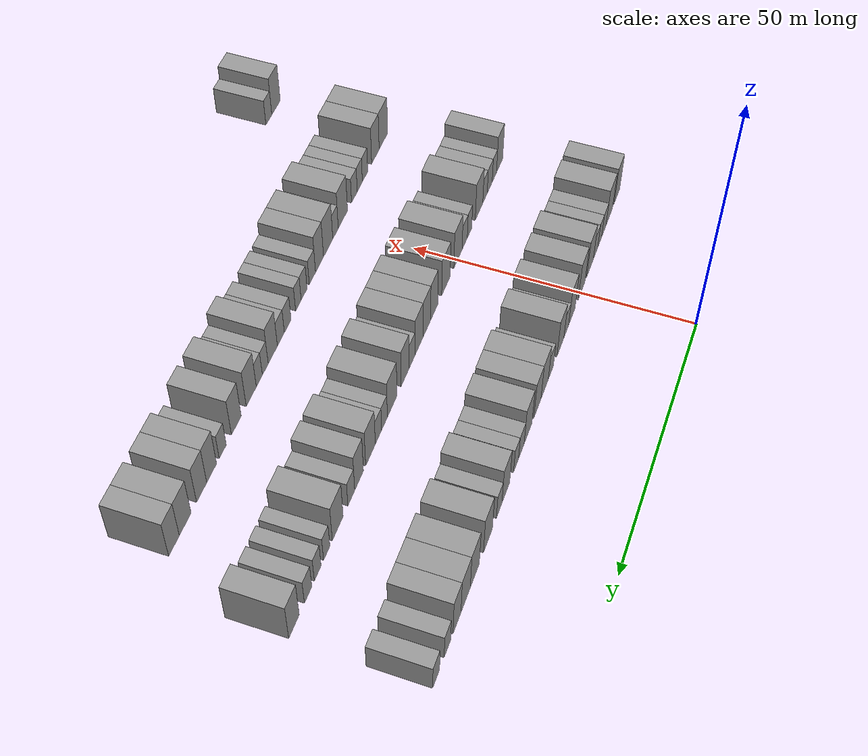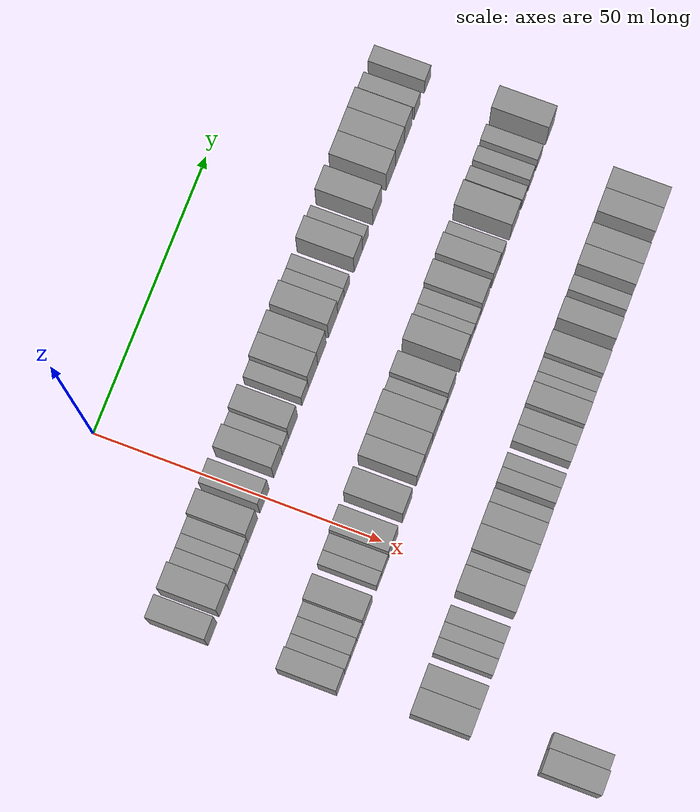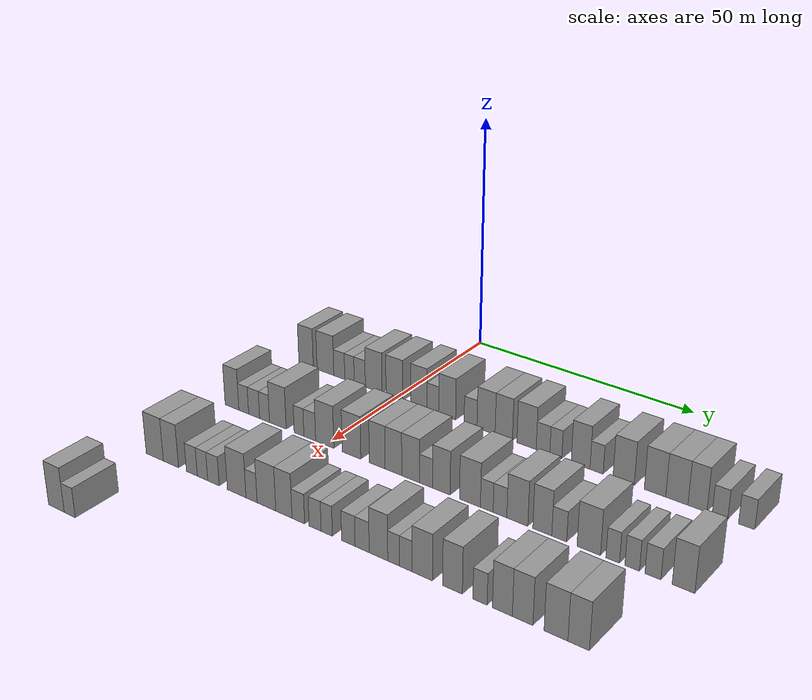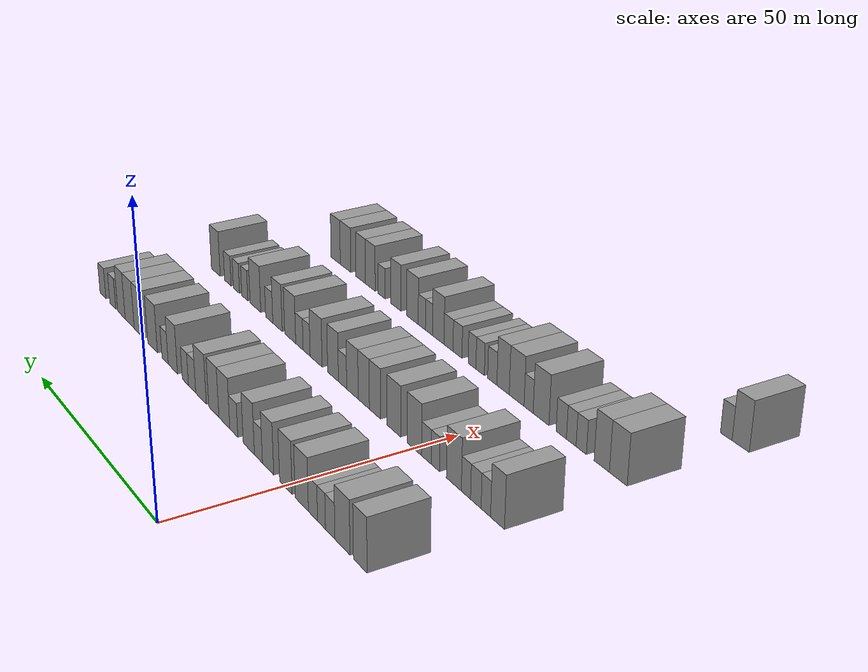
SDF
<sdf version="1.6">
 <world name="default">
  <model name="building_91">
   <static>1</static>
   <pose>25.0000 -23.4855 0 0.000000 0.000000 0.000000</pose>
   <link name="link">
    <pose>0 0 4.50 0 0 0</pose>
    <collision name="collision"><geometry><box><size>10.0000 3.9057 9.0000</size></box></geometry></collision>
    <visual name="visual">
     <cast_shadows>0</cast_shadows>
     <geometry><box><size>10.0000 3.9057 9.0000</size></box></geometry>
     <material>
      <script>
       <uri>model://grey_wall/materials/scripts</uri>
       <uri>model://grey_wall/materials/textures</uri>
       <name>vrc/grey_wall</name>
      </script>
     </material>
    </visual>
   </link>
  </model>
  <model name="building_92">
   <static>1</static>
   <pose>25.0000 -18.3001 0 0.000000 0.000000 0.000000</pose>
   <link name="link">
    <pose>0 0 4.50 0 0 0</pose>
    <collision name="collision"><geometry><box><size>10.0000 4.4651 9.0000</size></box></geometry></collision>
    <visual name="visual">
     <cast_shadows>0</cast_shadows>
     <geometry><box><size>10.0000 4.4651 9.0000</size></box></geometry>
     <material>
      <script>
       <uri>model://grey_wall/materials/scripts</uri>
       <uri>model://grey_wall/materials/textures</uri>
       <name>vrc/grey_wall</name>
      </script>
     </material>
    </visual>
   </link>
  </model>
  <model name="building_93">
   <static>1</static>
   <pose>25.0000 -14.6301 0 0.000000 0.000000 0.000000</pose>
   <link name="link">
    <pose>0 0 3.00 0 0 0</pose>
    <collision name="collision"><geometry><box><size>10.0000 2.8748 6.0000</size></box></geometry></collision>
    <visual name="visual">
     <cast_shadows>0</cast_shadows>
     <geometry><box><size>10.0000 2.8748 6.0000</size></box></geometry>
     <material>
      <script>
       <uri>model://grey_wall/materials/scripts</uri>
       <uri>model://grey_wall/materials/textures</uri>
       <name>vrc/grey_wall</name>
      </script>
     </material>
    </visual>
   </link>
  </model>
  <model name="building_94">
   <static>1</static>
   <pose>25.0000 -11.9665 0 0.000000 0.000000 0.000000</pose>
   <link name="link">
    <pose>0 0 3.00 0 0 0</pose>
    <collision name="collision"><geometry><box><size>10.0000 2.4523 6.0000</size></box></geometry></collision>
    <visual name="visual">
     <cast_shadows>0</cast_shadows>
     <geometry><box><size>10.0000 2.4523 6.0000</size></box></geometry>
     <material>
      <script>
       <uri>model://grey_wall/materials/scripts</uri>
       <uri>model://grey_wall/materials/textures</uri>
       <name>vrc/grey_wall</name>
      </script>
     </material>
    </visual>
   </link>
  </model>
  <model name="building_95">
   <static>1</static>
   <pose>25.0000 -9.3056 0 0.000000 0.000000 0.000000</pose>
   <link name="link">
    <pose>0 0 3.00 0 0 0</pose>
    <collision name="collision"><geometry><box><size>10.0000 2.8696 6.0000</size></box></geometry></collision>
    <visual name="visual">
     <cast_shadows>0</cast_shadows>
     <geometry><box><size>10.0000 2.8696 6.0000</size></box></geometry>
     <material>
      <script>
       <uri>model://grey_wall/materials/scripts</uri>
       <uri>model://grey_wall/materials/textures</uri>
       <name>vrc/grey_wall</name>
      </script>
     </material>
    </visual>
   </link>
  </model>
  <model name="building_96">
   <static>1</static>
   <pose>25.0000 -5.7426 0 0.000000 0.000000 0.000000</pose>
   <link name="link">
    <pose>0 0 4.50 0 0 0</pose>
    <collision name="collision"><geometry><box><size>10.0000 4.2564 9.0000</size></box></geometry></collision>
    <visual name="visual">
     <cast_shadows>0</cast_shadows>
     <geometry><box><size>10.0000 4.2564 9.0000</size></box></geometry>
     <material>
      <script>
       <uri>model://grey_wall/materials/scripts</uri>
       <uri>model://grey_wall/materials/textures</uri>
       <name>vrc/grey_wall</name>
      </script>
     </material>
    </visual>
   </link>
  </model>
  <model name="building_97">
   <static>1</static>
   <pose>25.0000 -0.5386 0 0.000000 0.000000 0.000000</pose>
   <link name="link">
    <pose>0 0 4.50 0 0 0</pose>
    <collision name="collision"><geometry><box><size>10.0000 4.1515 9.0000</size></box></geometry></collision>
    <visual name="visual">
     <cast_shadows>0</cast_shadows>
     <geometry><box><size>10.0000 4.1515 9.0000</size></box></geometry>
     <material>
      <script>
       <uri>model://grey_wall/materials/scripts</uri>
       <uri>model://grey_wall/materials/textures</uri>
       <name>vrc/grey_wall</name>
      </script>
     </material>
    </visual>
   </link>
  </model>
  <model name="building_98">
   <static>1</static>
   <pose>25.0000 5.4912 0 0.000000 0.000000 0.000000</pose>
   <link name="link">
    <pose>0 0 4.50 0 0 0</pose>
    <collision name="collision"><geometry><box><size>10.0000 3.9081 9.0000</size></box></geometry></collision>
    <visual name="visual">
     <cast_shadows>0</cast_shadows>
     <geometry><box><size>10.0000 3.9081 9.0000</size></box></geometry>
     <material>
      <script>
       <uri>model://grey_wall/materials/scripts</uri>
       <uri>model://grey_wall/materials/textures</uri>
       <name>vrc/grey_wall</name>
      </script>
     </material>
    </visual>
   </link>
  </model>
  <model name="building_99">
   <static>1</static>
   <pose>25.0000 8.8556 0 0.000000 0.000000 0.000000</pose>
   <link name="link">
    <pose>0 0 3.00 0 0 0</pose>
    <collision name="collision"><geometry><box><size>10.0000 2.8207 6.0000</size></box></geometry></collision>
    <visual name="visual">
     <cast_shadows>0</cast_shadows>
     <geometry><box><size>10.0000 2.8207 6.0000</size></box></geometry>
     <material>
      <script>
       <uri>model://grey_wall/materials/scripts</uri>
       <uri>model://grey_wall/materials/textures</uri>
       <name>vrc/grey_wall</name>
      </script>
     </material>
    </visual>
   </link>
  </model>
  <model name="building_100">
   <static>1</static>
   <pose>25.0000 12.2772 0 0.000000 0.000000 0.000000</pose>
   <link name="link">
    <pose>0 0 4.50 0 0 0</pose>
    <collision name="collision"><geometry><box><size>10.0000 4.0226 9.0000</size></box></geometry></collision>
    <visual name="visual">
     <cast_shadows>0</cast_shadows>
     <geometry><box><size>10.0000 4.0226 9.0000</size></box></geometry>
     <material>
      <script>
       <uri>model://grey_wall/materials/scripts</uri>
       <uri>model://grey_wall/materials/textures</uri>
       <name>vrc/grey_wall</name>
      </script>
     </material>
    </visual>
   </link>
  </model>
  <model name="building_101">
   <static>1</static>
   <pose>25.0000 17.7709 0 0.000000 0.000000 0.000000</pose>
   <link name="link">
    <pose>0 0 3.00 0 0 0</pose>
    <collision name="collision"><geometry><box><size>10.0000 2.9647 6.0000</size></box></geometry></collision>
    <visual name="visual">
     <cast_shadows>0</cast_shadows>
     <geometry><box><size>10.0000 2.9647 6.0000</size></box></geometry>
     <material>
      <script>
       <uri>model://grey_wall/materials/scripts</uri>
       <uri>model://grey_wall/materials/textures</uri>
       <name>vrc/grey_wall</name>
      </script>
     </material>
    </visual>
   </link>
  </model>
  <model name="building_102">
   <static>1</static>
   <pose>25.0000 21.3331 0 0.000000 0.000000 0.000000</pose>
   <link name="link">
    <pose>0 0 4.50 0 0 0</pose>
    <collision name="collision"><geometry><box><size>10.0000 4.1596 9.0000</size></box></geometry></collision>
    <visual name="visual">
     <cast_shadows>0</cast_shadows>
     <geometry><box><size>10.0000 4.1596 9.0000</size></box></geometry>
     <material>
      <script>
       <uri>model://grey_wall/materials/scripts</uri>
       <uri>model://grey_wall/materials/textures</uri>
       <name>vrc/grey_wall</name>
      </script>
     </material>
    </visual>
   </link>
  </model>
  <model name="building_103">
   <static>1</static>
   <pose>25.0000 25.3613 0 0.000000 0.000000 0.000000</pose>
   <link name="link">
    <pose>0 0 4.50 0 0 0</pose>
    <collision name="collision"><geometry><box><size>10.0000 3.8967 9.0000</size></box></geometry></collision>
    <visual name="visual">
     <cast_shadows>0</cast_shadows>
     <geometry><box><size>10.0000 3.8967 9.0000</size></box></geometry>
     <material>
      <script>
       <uri>model://grey_wall/materials/scripts</uri>
       <uri>model://grey_wall/materials/textures</uri>
       <name>vrc/grey_wall</name>
      </script>
     </material>
    </visual>
   </link>
  </model>
  <model name="building_104">
   <static>1</static>
   <pose>25.0000 30.4325 0 0.000000 0.000000 0.000000</pose>
   <link name="link">
    <pose>0 0 4.50 0 0 0</pose>
    <collision name="collision"><geometry><box><size>10.0000 4.2458 9.0000</size></box></geometry></collision>
    <visual name="visual">
     <cast_shadows>0</cast_shadows>
     <geometry><box><size>10.0000 4.2458 9.0000</size></box></geometry>
     <material>
      <script>
       <uri>model://grey_wall/materials/scripts</uri>
       <uri>model://grey_wall/materials/textures</uri>
       <name>vrc/grey_wall</name>
      </script>
     </material>
    </visual>
   </link>
  </model>
  <model name="building_105">
   <static>1</static>
   <pose>25.0000 34.0360 0 0.000000 0.000000 0.000000</pose>
   <link name="link">
    <pose>0 0 3.00 0 0 0</pose>
    <collision name="collision"><geometry><box><size>10.0000 2.9611 6.0000</size></box></geometry></collision>
    <visual name="visual">
     <cast_shadows>0</cast_shadows>
     <geometry><box><size>10.0000 2.9611 6.0000</size></box></geometry>
     <material>
      <script>
       <uri>model://grey_wall/materials/scripts</uri>
       <uri>model://grey_wall/materials/textures</uri>
       <name>vrc/grey_wall</name>
      </script>
     </material>
    </visual>
   </link>
  </model>
  <model name="building_106">
   <static>1</static>
   <pose>25.0000 36.8038 0 0.000000 0.000000 0.000000</pose>
   <link name="link">
    <pose>0 0 3.00 0 0 0</pose>
    <collision name="collision"><geometry><box><size>10.0000 2.5746 6.0000</size></box></geometry></collision>
    <visual name="visual">
     <cast_shadows>0</cast_shadows>
     <geometry><box><size>10.0000 2.5746 6.0000</size></box></geometry>
     <material>
      <script>
       <uri>model://grey_wall/materials/scripts</uri>
       <uri>model://grey_wall/materials/textures</uri>
       <name>vrc/grey_wall</name>
      </script>
     </material>
    </visual>
   </link>
  </model>
  <model name="building_107">
   <static>1</static>
   <pose>25.0000 42.0669 0 0.000000 0.000000 0.000000</pose>
   <link name="link">
    <pose>0 0 4.50 0 0 0</pose>
    <collision name="collision"><geometry><box><size>10.0000 3.9517 9.0000</size></box></geometry></collision>
    <visual name="visual">
     <cast_shadows>0</cast_shadows>
     <geometry><box><size>10.0000 3.9517 9.0000</size></box></geometry>
     <material>
      <script>
       <uri>model://grey_wall/materials/scripts</uri>
       <uri>model://grey_wall/materials/textures</uri>
       <name>vrc/grey_wall</name>
      </script>
     </material>
    </visual>
   </link>
  </model>
  <model name="building_108">
   <static>1</static>
   <pose>25.0000 45.4124 0 0.000000 0.000000 0.000000</pose>
   <link name="link">
    <pose>0 0 3.00 0 0 0</pose>
    <collision name="collision"><geometry><box><size>10.0000 2.7392 6.0000</size></box></geometry></collision>
    <visual name="visual">
     <cast_shadows>0</cast_shadows>
     <geometry><box><size>10.0000 2.7392 6.0000</size></box></geometry>
     <material>
      <script>
       <uri>model://grey_wall/materials/scripts</uri>
       <uri>model://grey_wall/materials/textures</uri>
       <name>vrc/grey_wall</name>
      </script>
     </material>
    </visual>
   </link>
  </model>
  <model name="building_109">
   <static>1</static>
   <pose>25.0000 50.9433 0 0.000000 0.000000 0.000000</pose>
   <link name="link">
    <pose>0 0 4.50 0 0 0</pose>
    <collision name="collision"><geometry><box><size>10.0000 4.3226 9.0000</size></box></geometry></collision>
    <visual name="visual">
     <cast_shadows>0</cast_shadows>
     <geometry><box><size>10.0000 4.3226 9.0000</size></box></geometry>
     <material>
      <script>
       <uri>model://grey_wall/materials/scripts</uri>
       <uri>model://grey_wall/materials/textures</uri>
       <name>vrc/grey_wall</name>
      </script>
     </material>
    </visual>
   </link>
  </model>
  <model name="building_110">
   <static>1</static>
   <pose>25.0000 57.2245 0 0.000000 0.000000 0.000000</pose>
   <link name="link">
    <pose>0 0 4.50 0 0 0</pose>
    <collision name="collision"><geometry><box><size>10.0000 4.2398 9.0000</size></box></geometry></collision>
    <visual name="visual">
     <cast_shadows>0</cast_shadows>
     <geometry><box><size>10.0000 4.2398 9.0000</size></box></geometry>
     <material>
      <script>
       <uri>model://grey_wall/materials/scripts</uri>
       <uri>model://grey_wall/materials/textures</uri>
       <name>vrc/grey_wall</name>
      </script>
     </material>
    </visual>
   </link>
  </model>
  <model name="building_111">
   <static>1</static>
   <pose>25.0000 61.4959 0 0.000000 0.000000 0.000000</pose>
   <link name="link">
    <pose>0 0 4.50 0 0 0</pose>
    <collision name="collision"><geometry><box><size>10.0000 4.3029 9.0000</size></box></geometry></collision>
    <visual name="visual">
     <cast_shadows>0</cast_shadows>
     <geometry><box><size>10.0000 4.3029 9.0000</size></box></geometry>
     <material>
      <script>
       <uri>model://grey_wall/materials/scripts</uri>
       <uri>model://grey_wall/materials/textures</uri>
       <name>vrc/grey_wall</name>
      </script>
     </material>
    </visual>
   </link>
  </model>
  <model name="building_112">
   <static>1</static>
   <pose>25.0000 65.4475 0 0.000000 0.000000 0.000000</pose>
   <link name="link">
    <pose>0 0 4.50 0 0 0</pose>
    <collision name="collision"><geometry><box><size>10.0000 3.6004 9.0000</size></box></geometry></collision>
    <visual name="visual">
     <cast_shadows>0</cast_shadows>
     <geometry><box><size>10.0000 3.6004 9.0000</size></box></geometry>
     <material>
      <script>
       <uri>model://grey_wall/materials/scripts</uri>
       <uri>model://grey_wall/materials/textures</uri>
       <name>vrc/grey_wall</name>
      </script>
     </material>
    </visual>
   </link>
  </model>
  <model name="building_113">
   <static>1</static>
   <pose>25.0000 69.6966 0 0.000000 0.000000 0.000000</pose>
   <link name="link">
    <pose>0 0 3.00 0 0 0</pose>
    <collision name="collision"><geometry><box><size>10.0000 2.8977 6.0000</size></box></geometry></collision>
    <visual name="visual">
     <cast_shadows>0</cast_shadows>
     <geometry><box><size>10.0000 2.8977 6.0000</size></box></geometry>
     <material>
      <script>
       <uri>model://grey_wall/materials/scripts</uri>
       <uri>model://grey_wall/materials/textures</uri>
       <name>vrc/grey_wall</name>
      </script>
     </material>
    </visual>
   </link>
  </model>
  <model name="building_114">
   <static>1</static>
   <pose>25.0000 74.6300 0 0.000000 0.000000 0.000000</pose>
   <link name="link">
    <pose>0 0 3.00 0 0 0</pose>
    <collision name="collision"><geometry><box><size>10.0000 2.9692 6.0000</size></box></geometry></collision>
    <visual name="visual">
     <cast_shadows>0</cast_shadows>
     <geometry><box><size>10.0000 2.9692 6.0000</size></box></geometry>
     <material>
      <script>
       <uri>model://grey_wall/materials/scripts</uri>
       <uri>model://grey_wall/materials/textures</uri>
       <name>vrc/grey_wall</name>
      </script>
     </material>
    </visual>
   </link>
  </model>
  <model name="building_278">
   <static>1</static>
   <pose>47.0000 -23.8120 0 0.000000 0.000000 0.000000</pose>
   <link name="link">
    <pose>0 0 4.50 0 0 0</pose>
    <collision name="collision"><geometry><box><size>10.0000 3.6523 9.0000</size></box></geometry></collision>
    <visual name="visual">
     <cast_shadows>0</cast_shadows>
     <geometry><box><size>10.0000 3.6523 9.0000</size></box></geometry>
     <material>
      <script>
       <uri>model://grey_wall/materials/scripts</uri>
       <uri>model://grey_wall/materials/textures</uri>
       <name>vrc/grey_wall</name>
      </script>
     </material>
    </visual>
   </link>
  </model>
  <model name="building_279">
   <static>1</static>
   <pose>47.0000 -20.7096 0 0.000000 0.000000 0.000000</pose>
   <link name="link">
    <pose>0 0 3.00 0 0 0</pose>
    <collision name="collision"><geometry><box><size>10.0000 2.5525 6.0000</size></box></geometry></collision>
    <visual name="visual">
     <cast_shadows>0</cast_shadows>
     <geometry><box><size>10.0000 2.5525 6.0000</size></box></geometry>
     <material>
      <script>
       <uri>model://grey_wall/materials/scripts</uri>
       <uri>model://grey_wall/materials/textures</uri>
       <name>vrc/grey_wall</name>
      </script>
     </material>
    </visual>
   </link>
  </model>
  <model name="building_280">
   <static>1</static>
   <pose>47.0000 -17.9913 0 0.000000 0.000000 0.000000</pose>
   <link name="link">
    <pose>0 0 3.00 0 0 0</pose>
    <collision name="collision"><geometry><box><size>10.0000 2.8841 6.0000</size></box></geometry></collision>
    <visual name="visual">
     <cast_shadows>0</cast_shadows>
     <geometry><box><size>10.0000 2.8841 6.0000</size></box></geometry>
     <material>
      <script>
       <uri>model://grey_wall/materials/scripts</uri>
       <uri>model://grey_wall/materials/textures</uri>
       <name>vrc/grey_wall</name>
      </script>
     </material>
    </visual>
   </link>
  </model>
  <model name="building_281">
   <static>1</static>
   <pose>47.0000 -15.2765 0 0.000000 0.000000 0.000000</pose>
   <link name="link">
    <pose>0 0 3.00 0 0 0</pose>
    <collision name="collision"><geometry><box><size>10.0000 2.5456 6.0000</size></box></geometry></collision>
    <visual name="visual">
     <cast_shadows>0</cast_shadows>
     <geometry><box><size>10.0000 2.5456 6.0000</size></box></geometry>
     <material>
      <script>
       <uri>model://grey_wall/materials/scripts</uri>
       <uri>model://grey_wall/materials/textures</uri>
       <name>vrc/grey_wall</name>
      </script>
     </material>
    </visual>
   </link>
  </model>
  <model name="building_282">
   <static>1</static>
   <pose>47.0000 -11.8802 0 0.000000 0.000000 0.000000</pose>
   <link name="link">
    <pose>0 0 4.50 0 0 0</pose>
    <collision name="collision"><geometry><box><size>10.0000 4.2469 9.0000</size></box></geometry></collision>
    <visual name="visual">
     <cast_shadows>0</cast_shadows>
     <geometry><box><size>10.0000 4.2469 9.0000</size></box></geometry>
     <material>
      <script>
       <uri>model://grey_wall/materials/scripts</uri>
       <uri>model://grey_wall/materials/textures</uri>
       <name>vrc/grey_wall</name>
      </script>
     </material>
    </visual>
   </link>
  </model>
  <model name="building_283">
   <static>1</static>
   <pose>47.0000 -6.5452 0 0.000000 0.000000 0.000000</pose>
   <link name="link">
    <pose>0 0 3.00 0 0 0</pose>
    <collision name="collision"><geometry><box><size>10.0000 2.4231 6.0000</size></box></geometry></collision>
    <visual name="visual">
     <cast_shadows>0</cast_shadows>
     <geometry><box><size>10.0000 2.4231 6.0000</size></box></geometry>
     <material>
      <script>
       <uri>model://grey_wall/materials/scripts</uri>
       <uri>model://grey_wall/materials/textures</uri>
       <name>vrc/grey_wall</name>
      </script>
     </material>
    </visual>
   </link>
  </model>
  <model name="building_284">
   <static>1</static>
   <pose>47.0000 -3.8878 0 0.000000 0.000000 0.000000</pose>
   <link name="link">
    <pose>0 0 3.00 0 0 0</pose>
    <collision name="collision"><geometry><box><size>10.0000 2.8918 6.0000</size></box></geometry></collision>
    <visual name="visual">
     <cast_shadows>0</cast_shadows>
     <geometry><box><size>10.0000 2.8918 6.0000</size></box></geometry>
     <material>
      <script>
       <uri>model://grey_wall/materials/scripts</uri>
       <uri>model://grey_wall/materials/textures</uri>
       <name>vrc/grey_wall</name>
      </script>
     </material>
    </visual>
   </link>
  </model>
  <model name="building_285">
   <static>1</static>
   <pose>47.0000 -0.2331 0 0.000000 0.000000 0.000000</pose>
   <link name="link">
    <pose>0 0 4.50 0 0 0</pose>
    <collision name="collision"><geometry><box><size>10.0000 4.4175 9.0000</size></box></geometry></collision>
    <visual name="visual">
     <cast_shadows>0</cast_shadows>
     <geometry><box><size>10.0000 4.4175 9.0000</size></box></geometry>
     <material>
      <script>
       <uri>model://grey_wall/materials/scripts</uri>
       <uri>model://grey_wall/materials/textures</uri>
       <name>vrc/grey_wall</name>
      </script>
     </material>
    </visual>
   </link>
  </model>
  <model name="building_286">
   <static>1</static>
   <pose>47.0000 6.1808 0 0.000000 0.000000 0.000000</pose>
   <link name="link">
    <pose>0 0 4.50 0 0 0</pose>
    <collision name="collision"><geometry><box><size>10.0000 4.4102 9.0000</size></box></geometry></collision>
    <visual name="visual">
     <cast_shadows>0</cast_shadows>
     <geometry><box><size>10.0000 4.4102 9.0000</size></box></geometry>
     <material>
      <script>
       <uri>model://grey_wall/materials/scripts</uri>
       <uri>model://grey_wall/materials/textures</uri>
       <name>vrc/grey_wall</name>
      </script>
     </material>
    </visual>
   </link>
  </model>
  <model name="building_287">
   <static>1</static>
   <pose>47.0000 12.2134 0 0.000000 0.000000 0.000000</pose>
   <link name="link">
    <pose>0 0 4.50 0 0 0</pose>
    <collision name="collision"><geometry><box><size>10.0000 3.6551 9.0000</size></box></geometry></collision>
    <visual name="visual">
     <cast_shadows>0</cast_shadows>
     <geometry><box><size>10.0000 3.6551 9.0000</size></box></geometry>
     <material>
      <script>
       <uri>model://grey_wall/materials/scripts</uri>
       <uri>model://grey_wall/materials/textures</uri>
       <name>vrc/grey_wall</name>
      </script>
     </material>
    </visual>
   </link>
  </model>
  <model name="building_288">
   <static>1</static>
   <pose>47.0000 15.9133 0 0.000000 0.000000 0.000000</pose>
   <link name="link">
    <pose>0 0 4.50 0 0 0</pose>
    <collision name="collision"><geometry><box><size>10.0000 3.7447 9.0000</size></box></geometry></collision>
    <visual name="visual">
     <cast_shadows>0</cast_shadows>
     <geometry><box><size>10.0000 3.7447 9.0000</size></box></geometry>
     <material>
      <script>
       <uri>model://grey_wall/materials/scripts</uri>
       <uri>model://grey_wall/materials/textures</uri>
       <name>vrc/grey_wall</name>
      </script>
     </material>
    </visual>
   </link>
  </model>
  <model name="building_289">
   <static>1</static>
   <pose>47.0000 19.7661 0 0.000000 0.000000 0.000000</pose>
   <link name="link">
    <pose>0 0 4.50 0 0 0</pose>
    <collision name="collision"><geometry><box><size>10.0000 3.9609 9.0000</size></box></geometry></collision>
    <visual name="visual">
     <cast_shadows>0</cast_shadows>
     <geometry><box><size>10.0000 3.9609 9.0000</size></box></geometry>
     <material>
      <script>
       <uri>model://grey_wall/materials/scripts</uri>
       <uri>model://grey_wall/materials/textures</uri>
       <name>vrc/grey_wall</name>
      </script>
     </material>
    </visual>
   </link>
  </model>
  <model name="building_290">
   <static>1</static>
   <pose>47.0000 23.1935 0 0.000000 0.000000 0.000000</pose>
   <link name="link">
    <pose>0 0 3.00 0 0 0</pose>
    <collision name="collision"><geometry><box><size>10.0000 2.8937 6.0000</size></box></geometry></collision>
    <visual name="visual">
     <cast_shadows>0</cast_shadows>
     <geometry><box><size>10.0000 2.8937 6.0000</size></box></geometry>
     <material>
      <script>
       <uri>model://grey_wall/materials/scripts</uri>
       <uri>model://grey_wall/materials/textures</uri>
       <name>vrc/grey_wall</name>
      </script>
     </material>
    </visual>
   </link>
  </model>
  <model name="building_291">
   <static>1</static>
   <pose>47.0000 26.5494 0 0.000000 0.000000 0.000000</pose>
   <link name="link">
    <pose>0 0 4.50 0 0 0</pose>
    <collision name="collision"><geometry><box><size>10.0000 3.8181 9.0000</size></box></geometry></collision>
    <visual name="visual">
     <cast_shadows>0</cast_shadows>
     <geometry><box><size>10.0000 3.8181 9.0000</size></box></geometry>
     <material>
      <script>
       <uri>model://grey_wall/materials/scripts</uri>
       <uri>model://grey_wall/materials/textures</uri>
       <name>vrc/grey_wall</name>
      </script>
     </material>
    </visual>
   </link>
  </model>
  <model name="building_292">
   <static>1</static>
   <pose>47.0000 32.6739 0 0.000000 0.000000 0.000000</pose>
   <link name="link">
    <pose>0 0 4.50 0 0 0</pose>
    <collision name="collision"><geometry><box><size>10.0000 4.4308 9.0000</size></box></geometry></collision>
    <visual name="visual">
     <cast_shadows>0</cast_shadows>
     <geometry><box><size>10.0000 4.4308 9.0000</size></box></geometry>
     <material>
      <script>
       <uri>model://grey_wall/materials/scripts</uri>
       <uri>model://grey_wall/materials/textures</uri>
       <name>vrc/grey_wall</name>
      </script>
     </material>
    </visual>
   </link>
  </model>
  <model name="building_293">
   <static>1</static>
   <pose>47.0000 36.2097 0 0.000000 0.000000 0.000000</pose>
   <link name="link">
    <pose>0 0 3.00 0 0 0</pose>
    <collision name="collision"><geometry><box><size>10.0000 2.6408 6.0000</size></box></geometry></collision>
    <visual name="visual">
     <cast_shadows>0</cast_shadows>
     <geometry><box><size>10.0000 2.6408 6.0000</size></box></geometry>
     <material>
      <script>
       <uri>model://grey_wall/materials/scripts</uri>
       <uri>model://grey_wall/materials/textures</uri>
       <name>vrc/grey_wall</name>
      </script>
     </material>
    </visual>
   </link>
  </model>
  <model name="building_294">
   <static>1</static>
   <pose>47.0000 38.9419 0 0.000000 0.000000 0.000000</pose>
   <link name="link">
    <pose>0 0 3.00 0 0 0</pose>
    <collision name="collision"><geometry><box><size>10.0000 2.8237 6.0000</size></box></geometry></collision>
    <visual name="visual">
     <cast_shadows>0</cast_shadows>
     <geometry><box><size>10.0000 2.8237 6.0000</size></box></geometry>
     <material>
      <script>
       <uri>model://grey_wall/materials/scripts</uri>
       <uri>model://grey_wall/materials/textures</uri>
       <name>vrc/grey_wall</name>
      </script>
     </material>
    </visual>
   </link>
  </model>
  <model name="building_295">
   <static>1</static>
   <pose>47.0000 42.4806 0 0.000000 0.000000 0.000000</pose>
   <link name="link">
    <pose>0 0 4.50 0 0 0</pose>
    <collision name="collision"><geometry><box><size>10.0000 4.2537 9.0000</size></box></geometry></collision>
    <visual name="visual">
     <cast_shadows>0</cast_shadows>
     <geometry><box><size>10.0000 4.2537 9.0000</size></box></geometry>
     <material>
      <script>
       <uri>model://grey_wall/materials/scripts</uri>
       <uri>model://grey_wall/materials/textures</uri>
       <name>vrc/grey_wall</name>
      </script>
     </material>
    </visual>
   </link>
  </model>
  <model name="building_296">
   <static>1</static>
   <pose>47.0000 47.4840 0 0.000000 0.000000 0.000000</pose>
   <link name="link">
    <pose>0 0 4.50 0 0 0</pose>
    <collision name="collision"><geometry><box><size>10.0000 3.7531 9.0000</size></box></geometry></collision>
    <visual name="visual">
     <cast_shadows>0</cast_shadows>
     <geometry><box><size>10.0000 3.7531 9.0000</size></box></geometry>
     <material>
      <script>
       <uri>model://grey_wall/materials/scripts</uri>
       <uri>model://grey_wall/materials/textures</uri>
       <name>vrc/grey_wall</name>
      </script>
     </material>
    </visual>
   </link>
  </model>
  <model name="building_297">
   <static>1</static>
   <pose>47.0000 50.8151 0 0.000000 0.000000 0.000000</pose>
   <link name="link">
    <pose>0 0 3.00 0 0 0</pose>
    <collision name="collision"><geometry><box><size>10.0000 2.9092 6.0000</size></box></geometry></collision>
    <visual name="visual">
     <cast_shadows>0</cast_shadows>
     <geometry><box><size>10.0000 2.9092 6.0000</size></box></geometry>
     <material>
      <script>
       <uri>model://grey_wall/materials/scripts</uri>
       <uri>model://grey_wall/materials/textures</uri>
       <name>vrc/grey_wall</name>
      </script>
     </material>
    </visual>
   </link>
  </model>
  <model name="building_298">
   <static>1</static>
   <pose>47.0000 56.5029 0 0.000000 0.000000 0.000000</pose>
   <link name="link">
    <pose>0 0 4.50 0 0 0</pose>
    <collision name="collision"><geometry><box><size>10.0000 4.4664 9.0000</size></box></geometry></collision>
    <visual name="visual">
     <cast_shadows>0</cast_shadows>
     <geometry><box><size>10.0000 4.4664 9.0000</size></box></geometry>
     <material>
      <script>
       <uri>model://grey_wall/materials/scripts</uri>
       <uri>model://grey_wall/materials/textures</uri>
       <name>vrc/grey_wall</name>
      </script>
     </material>
    </visual>
   </link>
  </model>
  <model name="building_299">
   <static>1</static>
   <pose>47.0000 61.0073 0 0.000000 0.000000 0.000000</pose>
   <link name="link">
    <pose>0 0 3.00 0 0 0</pose>
    <collision name="collision"><geometry><box><size>10.0000 2.5423 6.0000</size></box></geometry></collision>
    <visual name="visual">
     <cast_shadows>0</cast_shadows>
     <geometry><box><size>10.0000 2.5423 6.0000</size></box></geometry>
     <material>
      <script>
       <uri>model://grey_wall/materials/scripts</uri>
       <uri>model://grey_wall/materials/textures</uri>
       <name>vrc/grey_wall</name>
      </script>
     </material>
    </visual>
   </link>
  </model>
  <model name="building_300">
   <static>1</static>
   <pose>47.0000 64.6131 0 0.000000 0.000000 0.000000</pose>
   <link name="link">
    <pose>0 0 3.00 0 0 0</pose>
    <collision name="collision"><geometry><box><size>10.0000 2.6695 6.0000</size></box></geometry></collision>
    <visual name="visual">
     <cast_shadows>0</cast_shadows>
     <geometry><box><size>10.0000 2.6695 6.0000</size></box></geometry>
     <material>
      <script>
       <uri>model://grey_wall/materials/scripts</uri>
       <uri>model://grey_wall/materials/textures</uri>
       <name>vrc/grey_wall</name>
      </script>
     </material>
    </visual>
   </link>
  </model>
  <model name="building_301">
   <static>1</static>
   <pose>47.0000 68.3853 0 0.000000 0.000000 0.000000</pose>
   <link name="link">
    <pose>0 0 3.00 0 0 0</pose>
    <collision name="collision"><geometry><box><size>10.0000 2.8747 6.0000</size></box></geometry></collision>
    <visual name="visual">
     <cast_shadows>0</cast_shadows>
     <geometry><box><size>10.0000 2.8747 6.0000</size></box></geometry>
     <material>
      <script>
       <uri>model://grey_wall/materials/scripts</uri>
       <uri>model://grey_wall/materials/textures</uri>
       <name>vrc/grey_wall</name>
      </script>
     </material>
    </visual>
   </link>
  </model>
  <model name="building_302">
   <static>1</static>
   <pose>47.0000 73.8133 0 0.000000 0.000000 0.000000</pose>
   <link name="link">
    <pose>0 0 4.50 0 0 0</pose>
    <collision name="collision"><geometry><box><size>10.0000 3.9815 9.0000</size></box></geometry></collision>
    <visual name="visual">
     <cast_shadows>0</cast_shadows>
     <geometry><box><size>10.0000 3.9815 9.0000</size></box></geometry>
     <material>
      <script>
       <uri>model://grey_wall/materials/scripts</uri>
       <uri>model://grey_wall/materials/textures</uri>
       <name>vrc/grey_wall</name>
      </script>
     </material>
    </visual>
   </link>
  </model>
  <model name="building_466">
   <static>1</static>
   <pose>69.0000 -22.6189 0 0.000000 0.000000 0.000000</pose>
   <link name="link">
    <pose>0 0 4.50 0 0 0</pose>
    <collision name="collision"><geometry><box><size>10.0000 4.4505 9.0000</size></box></geometry></collision>
    <visual name="visual">
     <cast_shadows>0</cast_shadows>
     <geometry><box><size>10.0000 4.4505 9.0000</size></box></geometry>
     <material>
      <script>
       <uri>model://grey_wall/materials/scripts</uri>
       <uri>model://grey_wall/materials/textures</uri>
       <name>vrc/grey_wall</name>
      </script>
     </material>
    </visual>
   </link>
  </model>
  <model name="building_467">
   <static>1</static>
   <pose>69.0000 -18.4472 0 0.000000 0.000000 0.000000</pose>
   <link name="link">
    <pose>0 0 4.50 0 0 0</pose>
    <collision name="collision"><geometry><box><size>10.0000 3.8929 9.0000</size></box></geometry></collision>
    <visual name="visual">
     <cast_shadows>0</cast_shadows>
     <geometry><box><size>10.0000 3.8929 9.0000</size></box></geometry>
     <material>
      <script>
       <uri>model://grey_wall/materials/scripts</uri>
       <uri>model://grey_wall/materials/textures</uri>
       <name>vrc/grey_wall</name>
      </script>
     </material>
    </visual>
   </link>
  </model>
  <model name="building_468">
   <static>1</static>
   <pose>69.0000 -13.1316 0 0.000000 0.000000 0.000000</pose>
   <link name="link">
    <pose>0 0 3.00 0 0 0</pose>
    <collision name="collision"><geometry><box><size>10.0000 2.7383 6.0000</size></box></geometry></collision>
    <visual name="visual">
     <cast_shadows>0</cast_shadows>
     <geometry><box><size>10.0000 2.7383 6.0000</size></box></geometry>
     <material>
      <script>
       <uri>model://grey_wall/materials/scripts</uri>
       <uri>model://grey_wall/materials/textures</uri>
       <name>vrc/grey_wall</name>
      </script>
     </material>
    </visual>
   </link>
  </model>
  <model name="building_469">
   <static>1</static>
   <pose>69.0000 -10.4739 0 0.000000 0.000000 0.000000</pose>
   <link name="link">
    <pose>0 0 3.00 0 0 0</pose>
    <collision name="collision"><geometry><box><size>10.0000 2.5770 6.0000</size></box></geometry></collision>
    <visual name="visual">
     <cast_shadows>0</cast_shadows>
     <geometry><box><size>10.0000 2.5770 6.0000</size></box></geometry>
     <material>
      <script>
       <uri>model://grey_wall/materials/scripts</uri>
       <uri>model://grey_wall/materials/textures</uri>
       <name>vrc/grey_wall</name>
      </script>
     </material>
    </visual>
   </link>
  </model>
  <model name="building_470">
   <static>1</static>
   <pose>69.0000 -7.7820 0 0.000000 0.000000 0.000000</pose>
   <link name="link">
    <pose>0 0 3.00 0 0 0</pose>
    <collision name="collision"><geometry><box><size>10.0000 2.8068 6.0000</size></box></geometry></collision>
    <visual name="visual">
     <cast_shadows>0</cast_shadows>
     <geometry><box><size>10.0000 2.8068 6.0000</size></box></geometry>
     <material>
      <script>
       <uri>model://grey_wall/materials/scripts</uri>
       <uri>model://grey_wall/materials/textures</uri>
       <name>vrc/grey_wall</name>
      </script>
     </material>
    </visual>
   </link>
  </model>
  <model name="building_471">
   <static>1</static>
   <pose>69.0000 -2.1465 0 0.000000 0.000000 0.000000</pose>
   <link name="link">
    <pose>0 0 4.50 0 0 0</pose>
    <collision name="collision"><geometry><box><size>10.0000 4.4643 9.0000</size></box></geometry></collision>
    <visual name="visual">
     <cast_shadows>0</cast_shadows>
     <geometry><box><size>10.0000 4.4643 9.0000</size></box></geometry>
     <material>
      <script>
       <uri>model://grey_wall/materials/scripts</uri>
       <uri>model://grey_wall/materials/textures</uri>
       <name>vrc/grey_wall</name>
      </script>
     </material>
    </visual>
   </link>
  </model>
  <model name="building_472">
   <static>1</static>
   <pose>69.0000 1.3927 0 0.000000 0.000000 0.000000</pose>
   <link name="link">
    <pose>0 0 3.00 0 0 0</pose>
    <collision name="collision"><geometry><box><size>10.0000 2.6140 6.0000</size></box></geometry></collision>
    <visual name="visual">
     <cast_shadows>0</cast_shadows>
     <geometry><box><size>10.0000 2.6140 6.0000</size></box></geometry>
     <material>
      <script>
       <uri>model://grey_wall/materials/scripts</uri>
       <uri>model://grey_wall/materials/textures</uri>
       <name>vrc/grey_wall</name>
      </script>
     </material>
    </visual>
   </link>
  </model>
  <model name="building_473">
   <static>1</static>
   <pose>69.0000 4.8697 0 0.000000 0.000000 0.000000</pose>
   <link name="link">
    <pose>0 0 4.50 0 0 0</pose>
    <collision name="collision"><geometry><box><size>10.0000 4.3401 9.0000</size></box></geometry></collision>
    <visual name="visual">
     <cast_shadows>0</cast_shadows>
     <geometry><box><size>10.0000 4.3401 9.0000</size></box></geometry>
     <material>
      <script>
       <uri>model://grey_wall/materials/scripts</uri>
       <uri>model://grey_wall/materials/textures</uri>
       <name>vrc/grey_wall</name>
      </script>
     </material>
    </visual>
   </link>
  </model>
  <model name="building_474">
   <static>1</static>
   <pose>69.0000 8.8950 0 0.000000 0.000000 0.000000</pose>
   <link name="link">
    <pose>0 0 4.50 0 0 0</pose>
    <collision name="collision"><geometry><box><size>10.0000 3.7105 9.0000</size></box></geometry></collision>
    <visual name="visual">
     <cast_shadows>0</cast_shadows>
     <geometry><box><size>10.0000 3.7105 9.0000</size></box></geometry>
     <material>
      <script>
       <uri>model://grey_wall/materials/scripts</uri>
       <uri>model://grey_wall/materials/textures</uri>
       <name>vrc/grey_wall</name>
      </script>
     </material>
    </visual>
   </link>
  </model>
  <model name="building_475">
   <static>1</static>
   <pose>69.0000 12.1668 0 0.000000 0.000000 0.000000</pose>
   <link name="link">
    <pose>0 0 3.00 0 0 0</pose>
    <collision name="collision"><geometry><box><size>10.0000 2.8330 6.0000</size></box></geometry></collision>
    <visual name="visual">
     <cast_shadows>0</cast_shadows>
     <geometry><box><size>10.0000 2.8330 6.0000</size></box></geometry>
     <material>
      <script>
       <uri>model://grey_wall/materials/scripts</uri>
       <uri>model://grey_wall/materials/textures</uri>
       <name>vrc/grey_wall</name>
      </script>
     </material>
    </visual>
   </link>
  </model>
  <model name="building_476">
   <static>1</static>
   <pose>69.0000 15.9097 0 0.000000 0.000000 0.000000</pose>
   <link name="link">
    <pose>0 0 3.00 0 0 0</pose>
    <collision name="collision"><geometry><box><size>10.0000 2.6529 6.0000</size></box></geometry></collision>
    <visual name="visual">
     <cast_shadows>0</cast_shadows>
     <geometry><box><size>10.0000 2.6529 6.0000</size></box></geometry>
     <material>
      <script>
       <uri>model://grey_wall/materials/scripts</uri>
       <uri>model://grey_wall/materials/textures</uri>
       <name>vrc/grey_wall</name>
      </script>
     </material>
    </visual>
   </link>
  </model>
  <model name="building_477">
   <static>1</static>
   <pose>69.0000 18.4630 0 0.000000 0.000000 0.000000</pose>
   <link name="link">
    <pose>0 0 3.00 0 0 0</pose>
    <collision name="collision"><geometry><box><size>10.0000 2.4536 6.0000</size></box></geometry></collision>
    <visual name="visual">
     <cast_shadows>0</cast_shadows>
     <geometry><box><size>10.0000 2.4536 6.0000</size></box></geometry>
     <material>
      <script>
       <uri>model://grey_wall/materials/scripts</uri>
       <uri>model://grey_wall/materials/textures</uri>
       <name>vrc/grey_wall</name>
      </script>
     </material>
    </visual>
   </link>
  </model>
  <model name="building_478">
   <static>1</static>
   <pose>69.0000 23.1369 0 0.000000 0.000000 0.000000</pose>
   <link name="link">
    <pose>0 0 3.00 0 0 0</pose>
    <collision name="collision"><geometry><box><size>10.0000 2.8941 6.0000</size></box></geometry></collision>
    <visual name="visual">
     <cast_shadows>0</cast_shadows>
     <geometry><box><size>10.0000 2.8941 6.0000</size></box></geometry>
     <material>
      <script>
       <uri>model://grey_wall/materials/scripts</uri>
       <uri>model://grey_wall/materials/textures</uri>
       <name>vrc/grey_wall</name>
      </script>
     </material>
    </visual>
   </link>
  </model>
  <model name="building_479">
   <static>1</static>
   <pose>69.0000 26.0733 0 0.000000 0.000000 0.000000</pose>
   <link name="link">
    <pose>0 0 3.00 0 0 0</pose>
    <collision name="collision"><geometry><box><size>10.0000 2.9788 6.0000</size></box></geometry></collision>
    <visual name="visual">
     <cast_shadows>0</cast_shadows>
     <geometry><box><size>10.0000 2.9788 6.0000</size></box></geometry>
     <material>
      <script>
       <uri>model://grey_wall/materials/scripts</uri>
       <uri>model://grey_wall/materials/textures</uri>
       <name>vrc/grey_wall</name>
      </script>
     </material>
    </visual>
   </link>
  </model>
  <model name="building_480">
   <static>1</static>
   <pose>69.0000 29.4989 0 0.000000 0.000000 0.000000</pose>
   <link name="link">
    <pose>0 0 4.50 0 0 0</pose>
    <collision name="collision"><geometry><box><size>10.0000 3.8723 9.0000</size></box></geometry></collision>
    <visual name="visual">
     <cast_shadows>0</cast_shadows>
     <geometry><box><size>10.0000 3.8723 9.0000</size></box></geometry>
     <material>
      <script>
       <uri>model://grey_wall/materials/scripts</uri>
       <uri>model://grey_wall/materials/textures</uri>
       <name>vrc/grey_wall</name>
      </script>
     </material>
    </visual>
   </link>
  </model>
  <model name="building_481">
   <static>1</static>
   <pose>69.0000 32.6486 0 0.000000 0.000000 0.000000</pose>
   <link name="link">
    <pose>0 0 3.00 0 0 0</pose>
    <collision name="collision"><geometry><box><size>10.0000 2.4273 6.0000</size></box></geometry></collision>
    <visual name="visual">
     <cast_shadows>0</cast_shadows>
     <geometry><box><size>10.0000 2.4273 6.0000</size></box></geometry>
     <material>
      <script>
       <uri>model://grey_wall/materials/scripts</uri>
       <uri>model://grey_wall/materials/textures</uri>
       <name>vrc/grey_wall</name>
      </script>
     </material>
    </visual>
   </link>
  </model>
  <model name="building_482">
   <static>1</static>
   <pose>69.0000 35.1082 0 0.000000 0.000000 0.000000</pose>
   <link name="link">
    <pose>0 0 3.00 0 0 0</pose>
    <collision name="collision"><geometry><box><size>10.0000 2.4920 6.0000</size></box></geometry></collision>
    <visual name="visual">
     <cast_shadows>0</cast_shadows>
     <geometry><box><size>10.0000 2.4920 6.0000</size></box></geometry>
     <material>
      <script>
       <uri>model://grey_wall/materials/scripts</uri>
       <uri>model://grey_wall/materials/textures</uri>
       <name>vrc/grey_wall</name>
      </script>
     </material>
    </visual>
   </link>
  </model>
  <model name="building_483">
   <static>1</static>
   <pose>69.0000 38.3989 0 0.000000 0.000000 0.000000</pose>
   <link name="link">
    <pose>0 0 4.50 0 0 0</pose>
    <collision name="collision"><geometry><box><size>10.0000 4.0894 9.0000</size></box></geometry></collision>
    <visual name="visual">
     <cast_shadows>0</cast_shadows>
     <geometry><box><size>10.0000 4.0894 9.0000</size></box></geometry>
     <material>
      <script>
       <uri>model://grey_wall/materials/scripts</uri>
       <uri>model://grey_wall/materials/textures</uri>
       <name>vrc/grey_wall</name>
      </script>
     </material>
    </visual>
   </link>
  </model>
  <model name="building_484">
   <static>1</static>
   <pose>69.0000 44.3607 0 0.000000 0.000000 0.000000</pose>
   <link name="link">
    <pose>0 0 4.50 0 0 0</pose>
    <collision name="collision"><geometry><box><size>10.0000 3.8343 9.0000</size></box></geometry></collision>
    <visual name="visual">
     <cast_shadows>0</cast_shadows>
     <geometry><box><size>10.0000 3.8343 9.0000</size></box></geometry>
     <material>
      <script>
       <uri>model://grey_wall/materials/scripts</uri>
       <uri>model://grey_wall/materials/textures</uri>
       <name>vrc/grey_wall</name>
      </script>
     </material>
    </visual>
   </link>
  </model>
  <model name="building_485">
   <static>1</static>
   <pose>69.0000 49.6259 0 0.000000 0.000000 0.000000</pose>
   <link name="link">
    <pose>0 0 3.00 0 0 0</pose>
    <collision name="collision"><geometry><box><size>10.0000 2.6961 6.0000</size></box></geometry></collision>
    <visual name="visual">
     <cast_shadows>0</cast_shadows>
     <geometry><box><size>10.0000 2.6961 6.0000</size></box></geometry>
     <material>
      <script>
       <uri>model://grey_wall/materials/scripts</uri>
       <uri>model://grey_wall/materials/textures</uri>
       <name>vrc/grey_wall</name>
      </script>
     </material>
    </visual>
   </link>
  </model>
  <model name="building_486">
   <static>1</static>
   <pose>69.0000 53.8176 0 0.000000 0.000000 0.000000</pose>
   <link name="link">
    <pose>0 0 4.50 0 0 0</pose>
    <collision name="collision"><geometry><box><size>10.0000 3.6872 9.0000</size></box></geometry></collision>
    <visual name="visual">
     <cast_shadows>0</cast_shadows>
     <geometry><box><size>10.0000 3.6872 9.0000</size></box></geometry>
     <material>
      <script>
       <uri>model://grey_wall/materials/scripts</uri>
       <uri>model://grey_wall/materials/textures</uri>
       <name>vrc/grey_wall</name>
      </script>
     </material>
    </visual>
   </link>
  </model>
  <model name="building_487">
   <static>1</static>
   <pose>69.0000 57.5370 0 0.000000 0.000000 0.000000</pose>
   <link name="link">
    <pose>0 0 4.50 0 0 0</pose>
    <collision name="collision"><geometry><box><size>10.0000 3.7514 9.0000</size></box></geometry></collision>
    <visual name="visual">
     <cast_shadows>0</cast_shadows>
     <geometry><box><size>10.0000 3.7514 9.0000</size></box></geometry>
     <material>
      <script>
       <uri>model://grey_wall/materials/scripts</uri>
       <uri>model://grey_wall/materials/textures</uri>
       <name>vrc/grey_wall</name>
      </script>
     </material>
    </visual>
   </link>
  </model>
  <model name="building_488">
   <static>1</static>
   <pose>69.0000 63.5178 0 0.000000 0.000000 0.000000</pose>
   <link name="link">
    <pose>0 0 4.50 0 0 0</pose>
    <collision name="collision"><geometry><box><size>10.0000 4.2102 9.0000</size></box></geometry></collision>
    <visual name="visual">
     <cast_shadows>0</cast_shadows>
     <geometry><box><size>10.0000 4.2102 9.0000</size></box></geometry>
     <material>
      <script>
       <uri>model://grey_wall/materials/scripts</uri>
       <uri>model://grey_wall/materials/textures</uri>
       <name>vrc/grey_wall</name>
      </script>
     </material>
    </visual>
   </link>
  </model>
  <model name="building_489">
   <static>1</static>
   <pose>69.0000 67.4903 0 0.000000 0.000000 0.000000</pose>
   <link name="link">
    <pose>0 0 4.50 0 0 0</pose>
    <collision name="collision"><geometry><box><size>10.0000 3.7350 9.0000</size></box></geometry></collision>
    <visual name="visual">
     <cast_shadows>0</cast_shadows>
     <geometry><box><size>10.0000 3.7350 9.0000</size></box></geometry>
     <material>
      <script>
       <uri>model://grey_wall/materials/scripts</uri>
       <uri>model://grey_wall/materials/textures</uri>
       <name>vrc/grey_wall</name>
      </script>
     </material>
    </visual>
   </link>
  </model>
  <model name="building_660">
   <static>1</static>
   <pose>91.0000 -24.1665 0 0.000000 0.000000 0.000000</pose>
   <link name="link">
    <pose>0 0 4.50 0 0 0</pose>
    <collision name="collision"><geometry><box><size>10.0000 4.0540 9.0000</size></box></geometry></collision>
    <visual name="visual">
     <cast_shadows>0</cast_shadows>
     <geometry><box><size>10.0000 4.0540 9.0000</size></box></geometry>
     <material>
      <script>
       <uri>model://grey_wall/materials/scripts</uri>
       <uri>model://grey_wall/materials/textures</uri>
       <name>vrc/grey_wall</name>
      </script>
     </material>
    </visual>
   </link>
  </model>
  <model name="building_661">
   <static>1</static>
   <pose>91.0000 -20.7415 0 0.000000 0.000000 0.000000</pose>
   <link name="link">
    <pose>0 0 3.00 0 0 0</pose>
    <collision name="collision"><geometry><box><size>10.0000 2.7960 6.0000</size></box></geometry></collision>
    <visual name="visual">
     <cast_shadows>0</cast_shadows>
     <geometry><box><size>10.0000 2.7960 6.0000</size></box></geometry>
     <material>
      <script>
       <uri>model://grey_wall/materials/scripts</uri>
       <uri>model://grey_wall/materials/textures</uri>
       <name>vrc/grey_wall</name>
      </script>
     </material>
    </visual>
   </link>
  </model>
 </world>
</sdf>
